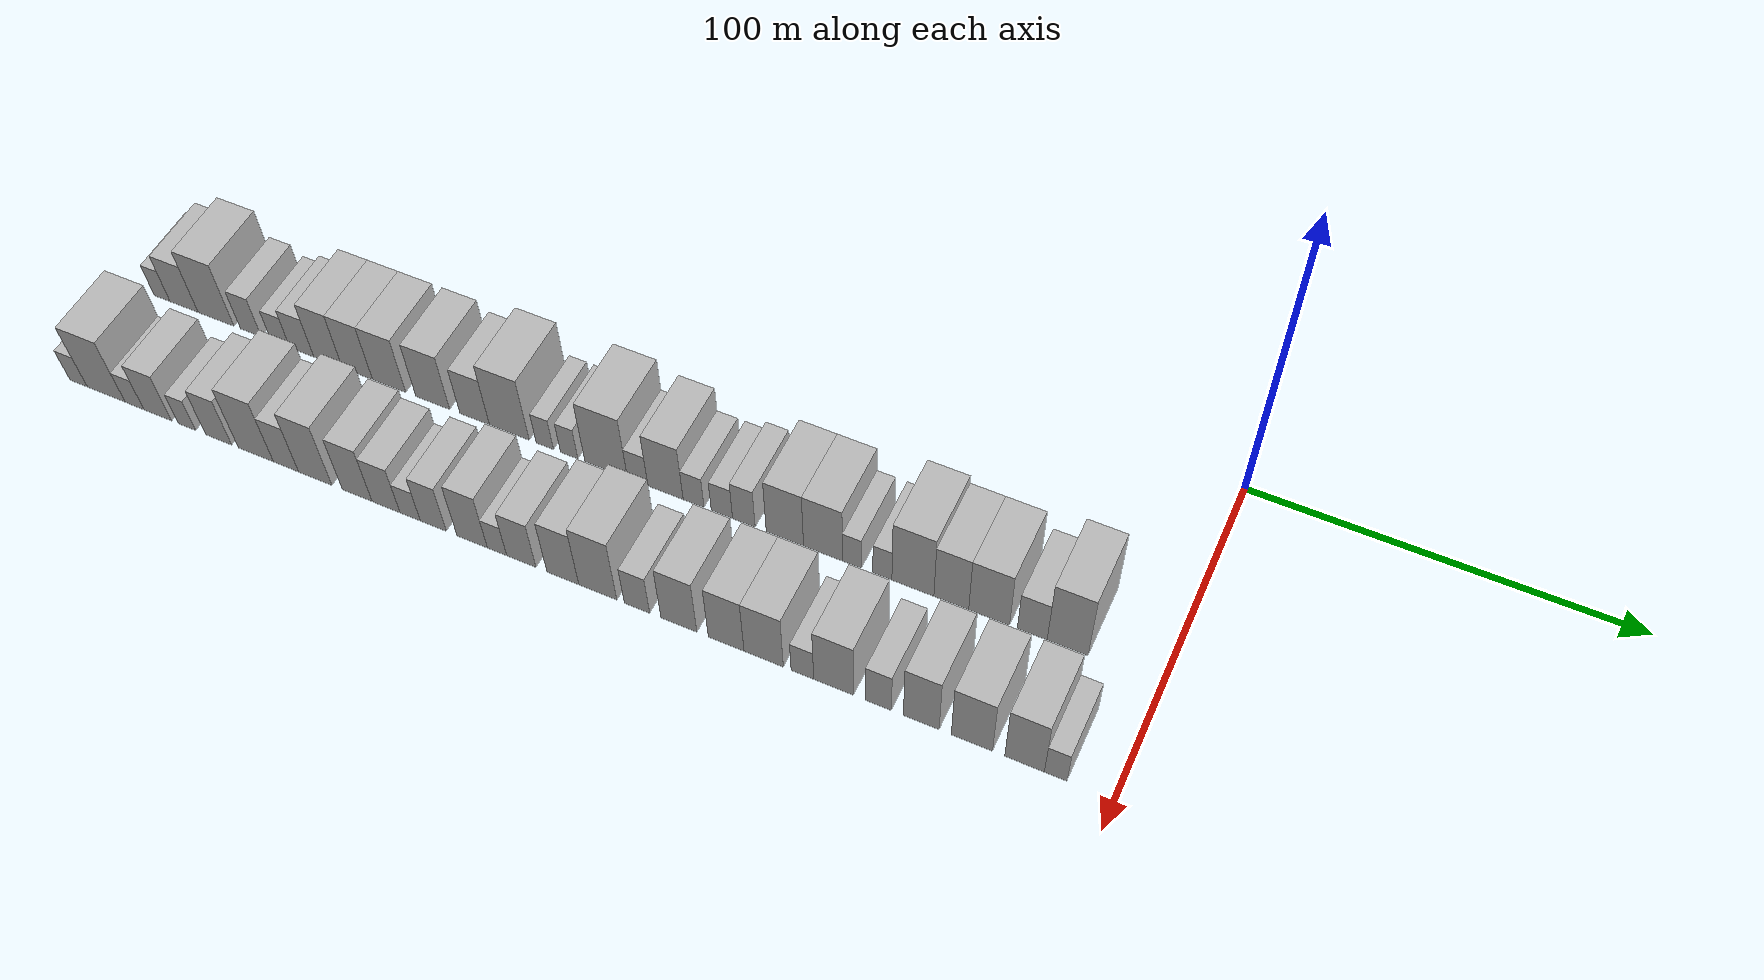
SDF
<sdf version="1.6">
 <world name="default">
  <model name="building_1">
   <static>1</static>
   <pose>50.0000 -278.5065 0 0.000000 0.000000 0.000000</pose>
   <link name="link">
    <pose>0 0 6.00 0 0 0</pose>
    <collision name="collision"><geometry><box><size>20.0000 4.9871 12.0000</size></box></geometry></collision>
    <visual name="visual">
     <cast_shadows>0</cast_shadows>
     <geometry><box><size>20.0000 4.9871 12.0000</size></box></geometry>
     <material>
      <script>
       <uri>model://HANNAS_wall/materials/scripts</uri>
       <uri>model://HANNAS_wall/materials/textures</uri>
       <name>vrc/HANNAS_wall</name>
      </script>
     </material>
    </visual>
   </link>
  </model>
  <model name="building_2">
   <static>1</static>
   <pose>50.0000 -271.5844 0 0.000000 0.000000 0.000000</pose>
   <link name="link">
    <pose>0 0 9.00 0 0 0</pose>
    <collision name="collision"><geometry><box><size>20.0000 8.8571 18.0000</size></box></geometry></collision>
    <visual name="visual">
     <cast_shadows>0</cast_shadows>
     <geometry><box><size>20.0000 8.8571 18.0000</size></box></geometry>
     <material>
      <script>
       <uri>model://HANNAS_wall/materials/scripts</uri>
       <uri>model://HANNAS_wall/materials/textures</uri>
       <name>vrc/HANNAS_wall</name>
      </script>
     </material>
    </visual>
   </link>
  </model>
  <model name="building_3">
   <static>1</static>
   <pose>50.0000 -261.5366 0 0.000000 0.000000 0.000000</pose>
   <link name="link">
    <pose>0 0 12.00 0 0 0</pose>
    <collision name="collision"><geometry><box><size>20.0000 11.2384 24.0000</size></box></geometry></collision>
    <visual name="visual">
     <cast_shadows>0</cast_shadows>
     <geometry><box><size>20.0000 11.2384 24.0000</size></box></geometry>
     <material>
      <script>
       <uri>model://HANNAS_wall/materials/scripts</uri>
       <uri>model://HANNAS_wall/materials/textures</uri>
       <name>vrc/HANNAS_wall</name>
      </script>
     </material>
    </visual>
   </link>
  </model>
  <model name="building_4">
   <static>1</static>
   <pose>50.0000 -250.6917 0 0.000000 0.000000 0.000000</pose>
   <link name="link">
    <pose>0 0 7.50 0 0 0</pose>
    <collision name="collision"><geometry><box><size>20.0000 6.4514 15.0000</size></box></geometry></collision>
    <visual name="visual">
     <cast_shadows>0</cast_shadows>
     <geometry><box><size>20.0000 6.4514 15.0000</size></box></geometry>
     <material>
      <script>
       <uri>model://HANNAS_wall/materials/scripts</uri>
       <uri>model://HANNAS_wall/materials/textures</uri>
       <name>vrc/HANNAS_wall</name>
      </script>
     </material>
    </visual>
   </link>
  </model>
  <model name="building_5">
   <static>1</static>
   <pose>50.0000 -241.5731 0 0.000000 0.000000 0.000000</pose>
   <link name="link">
    <pose>0 0 6.00 0 0 0</pose>
    <collision name="collision"><geometry><box><size>20.0000 5.7857 12.0000</size></box></geometry></collision>
    <visual name="visual">
     <cast_shadows>0</cast_shadows>
     <geometry><box><size>20.0000 5.7857 12.0000</size></box></geometry>
     <material>
      <script>
       <uri>model://HANNAS_wall/materials/scripts</uri>
       <uri>model://HANNAS_wall/materials/textures</uri>
       <name>vrc/HANNAS_wall</name>
      </script>
     </material>
    </visual>
   </link>
  </model>
  <model name="building_6">
   <static>1</static>
   <pose>50.0000 -235.0290 0 0.000000 0.000000 0.000000</pose>
   <link name="link">
    <pose>0 0 7.50 0 0 0</pose>
    <collision name="collision"><geometry><box><size>20.0000 7.3026 15.0000</size></box></geometry></collision>
    <visual name="visual">
     <cast_shadows>0</cast_shadows>
     <geometry><box><size>20.0000 7.3026 15.0000</size></box></geometry>
     <material>
      <script>
       <uri>model://HANNAS_wall/materials/scripts</uri>
       <uri>model://HANNAS_wall/materials/textures</uri>
       <name>vrc/HANNAS_wall</name>
      </script>
     </material>
    </visual>
   </link>
  </model>
  <model name="building_7">
   <static>1</static>
   <pose>50.0000 -227.0505 0 0.000000 0.000000 0.000000</pose>
   <link name="link">
    <pose>0 0 10.50 0 0 0</pose>
    <collision name="collision"><geometry><box><size>20.0000 8.6544 21.0000</size></box></geometry></collision>
    <visual name="visual">
     <cast_shadows>0</cast_shadows>
     <geometry><box><size>20.0000 8.6544 21.0000</size></box></geometry>
     <material>
      <script>
       <uri>model://HANNAS_wall/materials/scripts</uri>
       <uri>model://HANNAS_wall/materials/textures</uri>
       <name>vrc/HANNAS_wall</name>
      </script>
     </material>
    </visual>
   </link>
  </model>
  <model name="building_8">
   <static>1</static>
   <pose>50.0000 -218.1994 0 0.000000 0.000000 0.000000</pose>
   <link name="link">
    <pose>0 0 10.50 0 0 0</pose>
    <collision name="collision"><geometry><box><size>20.0000 9.0477 21.0000</size></box></geometry></collision>
    <visual name="visual">
     <cast_shadows>0</cast_shadows>
     <geometry><box><size>20.0000 9.0477 21.0000</size></box></geometry>
     <material>
      <script>
       <uri>model://HANNAS_wall/materials/scripts</uri>
       <uri>model://HANNAS_wall/materials/textures</uri>
       <name>vrc/HANNAS_wall</name>
      </script>
     </material>
    </visual>
   </link>
  </model>
  <model name="building_9">
   <static>1</static>
   <pose>50.0000 -208.7246 0 0.000000 0.000000 0.000000</pose>
   <link name="link">
    <pose>0 0 10.50 0 0 0</pose>
    <collision name="collision"><geometry><box><size>20.0000 9.9019 21.0000</size></box></geometry></collision>
    <visual name="visual">
     <cast_shadows>0</cast_shadows>
     <geometry><box><size>20.0000 9.9019 21.0000</size></box></geometry>
     <material>
      <script>
       <uri>model://HANNAS_wall/materials/scripts</uri>
       <uri>model://HANNAS_wall/materials/textures</uri>
       <name>vrc/HANNAS_wall</name>
      </script>
     </material>
    </visual>
   </link>
  </model>
  <model name="building_10">
   <static>1</static>
   <pose>50.0000 -195.8048 0 0.000000 0.000000 0.000000</pose>
   <link name="link">
    <pose>0 0 10.50 0 0 0</pose>
    <collision name="collision"><geometry><box><size>20.0000 9.9379 21.0000</size></box></geometry></collision>
    <visual name="visual">
     <cast_shadows>0</cast_shadows>
     <geometry><box><size>20.0000 9.9379 21.0000</size></box></geometry>
     <material>
      <script>
       <uri>model://HANNAS_wall/materials/scripts</uri>
       <uri>model://HANNAS_wall/materials/textures</uri>
       <name>vrc/HANNAS_wall</name>
      </script>
     </material>
    </visual>
   </link>
  </model>
  <model name="building_11">
   <static>1</static>
   <pose>50.0000 -183.5506 0 0.000000 0.000000 0.000000</pose>
   <link name="link">
    <pose>0 0 9.00 0 0 0</pose>
    <collision name="collision"><geometry><box><size>20.0000 8.5705 18.0000</size></box></geometry></collision>
    <visual name="visual">
     <cast_shadows>0</cast_shadows>
     <geometry><box><size>20.0000 8.5705 18.0000</size></box></geometry>
     <material>
      <script>
       <uri>model://HANNAS_wall/materials/scripts</uri>
       <uri>model://HANNAS_wall/materials/textures</uri>
       <name>vrc/HANNAS_wall</name>
      </script>
     </material>
    </visual>
   </link>
  </model>
  <model name="building_12">
   <static>1</static>
   <pose>50.0000 -173.5130 0 0.000000 0.000000 0.000000</pose>
   <link name="link">
    <pose>0 0 12.00 0 0 0</pose>
    <collision name="collision"><geometry><box><size>20.0000 11.5047 24.0000</size></box></geometry></collision>
    <visual name="visual">
     <cast_shadows>0</cast_shadows>
     <geometry><box><size>20.0000 11.5047 24.0000</size></box></geometry>
     <material>
      <script>
       <uri>model://HANNAS_wall/materials/scripts</uri>
       <uri>model://HANNAS_wall/materials/textures</uri>
       <name>vrc/HANNAS_wall</name>
      </script>
     </material>
    </visual>
   </link>
  </model>
  <model name="building_13">
   <static>1</static>
   <pose>50.0000 -163.2944 0 0.000000 0.000000 0.000000</pose>
   <link name="link">
    <pose>0 0 6.00 0 0 0</pose>
    <collision name="collision"><geometry><box><size>20.0000 4.9323 12.0000</size></box></geometry></collision>
    <visual name="visual">
     <cast_shadows>0</cast_shadows>
     <geometry><box><size>20.0000 4.9323 12.0000</size></box></geometry>
     <material>
      <script>
       <uri>model://HANNAS_wall/materials/scripts</uri>
       <uri>model://HANNAS_wall/materials/textures</uri>
       <name>vrc/HANNAS_wall</name>
      </script>
     </material>
    </visual>
   </link>
  </model>
  <model name="building_14">
   <static>1</static>
   <pose>50.0000 -156.3599 0 0.000000 0.000000 0.000000</pose>
   <link name="link">
    <pose>0 0 6.00 0 0 0</pose>
    <collision name="collision"><geometry><box><size>20.0000 4.9368 12.0000</size></box></geometry></collision>
    <visual name="visual">
     <cast_shadows>0</cast_shadows>
     <geometry><box><size>20.0000 4.9368 12.0000</size></box></geometry>
     <material>
      <script>
       <uri>model://HANNAS_wall/materials/scripts</uri>
       <uri>model://HANNAS_wall/materials/textures</uri>
       <name>vrc/HANNAS_wall</name>
      </script>
     </material>
    </visual>
   </link>
  </model>
  <model name="building_15">
   <static>1</static>
   <pose>50.0000 -145.9260 0 0.000000 0.000000 0.000000</pose>
   <link name="link">
    <pose>0 0 12.00 0 0 0</pose>
    <collision name="collision"><geometry><box><size>20.0000 11.9310 24.0000</size></box></geometry></collision>
    <visual name="visual">
     <cast_shadows>0</cast_shadows>
     <geometry><box><size>20.0000 11.9310 24.0000</size></box></geometry>
     <material>
      <script>
       <uri>model://HANNAS_wall/materials/scripts</uri>
       <uri>model://HANNAS_wall/materials/textures</uri>
       <name>vrc/HANNAS_wall</name>
      </script>
     </material>
    </visual>
   </link>
  </model>
  <model name="building_16">
   <static>1</static>
   <pose>50.0000 -137.0980 0 0.000000 0.000000 0.000000</pose>
   <link name="link">
    <pose>0 0 6.00 0 0 0</pose>
    <collision name="collision"><geometry><box><size>20.0000 5.7249 12.0000</size></box></geometry></collision>
    <visual name="visual">
     <cast_shadows>0</cast_shadows>
     <geometry><box><size>20.0000 5.7249 12.0000</size></box></geometry>
     <material>
      <script>
       <uri>model://HANNAS_wall/materials/scripts</uri>
       <uri>model://HANNAS_wall/materials/textures</uri>
       <name>vrc/HANNAS_wall</name>
      </script>
     </material>
    </visual>
   </link>
  </model>
  <model name="building_17">
   <static>1</static>
   <pose>50.0000 -129.3596 0 0.000000 0.000000 0.000000</pose>
   <link name="link">
    <pose>0 0 10.50 0 0 0</pose>
    <collision name="collision"><geometry><box><size>20.0000 9.7519 21.0000</size></box></geometry></collision>
    <visual name="visual">
     <cast_shadows>0</cast_shadows>
     <geometry><box><size>20.0000 9.7519 21.0000</size></box></geometry>
     <material>
      <script>
       <uri>model://HANNAS_wall/materials/scripts</uri>
       <uri>model://HANNAS_wall/materials/textures</uri>
       <name>vrc/HANNAS_wall</name>
      </script>
     </material>
    </visual>
   </link>
  </model>
  <model name="building_18">
   <static>1</static>
   <pose>50.0000 -121.6277 0 0.000000 0.000000 0.000000</pose>
   <link name="link">
    <pose>0 0 6.00 0 0 0</pose>
    <collision name="collision"><geometry><box><size>20.0000 5.7120 12.0000</size></box></geometry></collision>
    <visual name="visual">
     <cast_shadows>0</cast_shadows>
     <geometry><box><size>20.0000 5.7120 12.0000</size></box></geometry>
     <material>
      <script>
       <uri>model://HANNAS_wall/materials/scripts</uri>
       <uri>model://HANNAS_wall/materials/textures</uri>
       <name>vrc/HANNAS_wall</name>
      </script>
     </material>
    </visual>
   </link>
  </model>
  <model name="building_19">
   <static>1</static>
   <pose>50.0000 -113.8712 0 0.000000 0.000000 0.000000</pose>
   <link name="link">
    <pose>0 0 6.00 0 0 0</pose>
    <collision name="collision"><geometry><box><size>20.0000 5.8010 12.0000</size></box></geometry></collision>
    <visual name="visual">
     <cast_shadows>0</cast_shadows>
     <geometry><box><size>20.0000 5.8010 12.0000</size></box></geometry>
     <material>
      <script>
       <uri>model://HANNAS_wall/materials/scripts</uri>
       <uri>model://HANNAS_wall/materials/textures</uri>
       <name>vrc/HANNAS_wall</name>
      </script>
     </material>
    </visual>
   </link>
  </model>
  <model name="building_20">
   <static>1</static>
   <pose>50.0000 -107.9117 0 0.000000 0.000000 0.000000</pose>
   <link name="link">
    <pose>0 0 7.50 0 0 0</pose>
    <collision name="collision"><geometry><box><size>20.0000 6.1179 15.0000</size></box></geometry></collision>
    <visual name="visual">
     <cast_shadows>0</cast_shadows>
     <geometry><box><size>20.0000 6.1179 15.0000</size></box></geometry>
     <material>
      <script>
       <uri>model://HANNAS_wall/materials/scripts</uri>
       <uri>model://HANNAS_wall/materials/textures</uri>
       <name>vrc/HANNAS_wall</name>
      </script>
     </material>
    </visual>
   </link>
  </model>
  <model name="building_21">
   <static>1</static>
   <pose>50.0000 -96.8472 0 0.000000 0.000000 0.000000</pose>
   <link name="link">
    <pose>0 0 10.50 0 0 0</pose>
    <collision name="collision"><geometry><box><size>20.0000 10.0112 21.0000</size></box></geometry></collision>
    <visual name="visual">
     <cast_shadows>0</cast_shadows>
     <geometry><box><size>20.0000 10.0112 21.0000</size></box></geometry>
     <material>
      <script>
       <uri>model://HANNAS_wall/materials/scripts</uri>
       <uri>model://HANNAS_wall/materials/textures</uri>
       <name>vrc/HANNAS_wall</name>
      </script>
     </material>
    </visual>
   </link>
  </model>
  <model name="building_22">
   <static>1</static>
   <pose>50.0000 -86.6377 0 0.000000 0.000000 0.000000</pose>
   <link name="link">
    <pose>0 0 10.50 0 0 0</pose>
    <collision name="collision"><geometry><box><size>20.0000 10.4077 21.0000</size></box></geometry></collision>
    <visual name="visual">
     <cast_shadows>0</cast_shadows>
     <geometry><box><size>20.0000 10.4077 21.0000</size></box></geometry>
     <material>
      <script>
       <uri>model://HANNAS_wall/materials/scripts</uri>
       <uri>model://HANNAS_wall/materials/textures</uri>
       <name>vrc/HANNAS_wall</name>
      </script>
     </material>
    </visual>
   </link>
  </model>
  <model name="building_23">
   <static>1</static>
   <pose>50.0000 -78.9674 0 0.000000 0.000000 0.000000</pose>
   <link name="link">
    <pose>0 0 6.00 0 0 0</pose>
    <collision name="collision"><geometry><box><size>20.0000 4.9329 12.0000</size></box></geometry></collision>
    <visual name="visual">
     <cast_shadows>0</cast_shadows>
     <geometry><box><size>20.0000 4.9329 12.0000</size></box></geometry>
     <material>
      <script>
       <uri>model://HANNAS_wall/materials/scripts</uri>
       <uri>model://HANNAS_wall/materials/textures</uri>
       <name>vrc/HANNAS_wall</name>
      </script>
     </material>
    </visual>
   </link>
  </model>
  <model name="building_24">
   <static>1</static>
   <pose>50.0000 -71.0161 0 0.000000 0.000000 0.000000</pose>
   <link name="link">
    <pose>0 0 6.00 0 0 0</pose>
    <collision name="collision"><geometry><box><size>20.0000 4.9698 12.0000</size></box></geometry></collision>
    <visual name="visual">
     <cast_shadows>0</cast_shadows>
     <geometry><box><size>20.0000 4.9698 12.0000</size></box></geometry>
     <material>
      <script>
       <uri>model://HANNAS_wall/materials/scripts</uri>
       <uri>model://HANNAS_wall/materials/textures</uri>
       <name>vrc/HANNAS_wall</name>
      </script>
     </material>
    </visual>
   </link>
  </model>
  <model name="building_25">
   <static>1</static>
   <pose>50.0000 -63.0694 0 0.000000 0.000000 0.000000</pose>
   <link name="link">
    <pose>0 0 12.00 0 0 0</pose>
    <collision name="collision"><geometry><box><size>20.0000 10.9234 24.0000</size></box></geometry></collision>
    <visual name="visual">
     <cast_shadows>0</cast_shadows>
     <geometry><box><size>20.0000 10.9234 24.0000</size></box></geometry>
     <material>
      <script>
       <uri>model://HANNAS_wall/materials/scripts</uri>
       <uri>model://HANNAS_wall/materials/textures</uri>
       <name>vrc/HANNAS_wall</name>
      </script>
     </material>
    </visual>
   </link>
  </model>
  <model name="building_26">
   <static>1</static>
   <pose>50.0000 -53.1333 0 0.000000 0.000000 0.000000</pose>
   <link name="link">
    <pose>0 0 10.50 0 0 0</pose>
    <collision name="collision"><geometry><box><size>20.0000 8.9490 21.0000</size></box></geometry></collision>
    <visual name="visual">
     <cast_shadows>0</cast_shadows>
     <geometry><box><size>20.0000 8.9490 21.0000</size></box></geometry>
     <material>
      <script>
       <uri>model://HANNAS_wall/materials/scripts</uri>
       <uri>model://HANNAS_wall/materials/textures</uri>
       <name>vrc/HANNAS_wall</name>
      </script>
     </material>
    </visual>
   </link>
  </model>
  <model name="building_27">
   <static>1</static>
   <pose>50.0000 -43.4599 0 0.000000 0.000000 0.000000</pose>
   <link name="link">
    <pose>0 0 10.50 0 0 0</pose>
    <collision name="collision"><geometry><box><size>20.0000 10.3978 21.0000</size></box></geometry></collision>
    <visual name="visual">
     <cast_shadows>0</cast_shadows>
     <geometry><box><size>20.0000 10.3978 21.0000</size></box></geometry>
     <material>
      <script>
       <uri>model://HANNAS_wall/materials/scripts</uri>
       <uri>model://HANNAS_wall/materials/textures</uri>
       <name>vrc/HANNAS_wall</name>
      </script>
     </material>
    </visual>
   </link>
  </model>
  <model name="building_28">
   <static>1</static>
   <pose>50.0000 -32.5189 0 0.000000 0.000000 0.000000</pose>
   <link name="link">
    <pose>0 0 7.50 0 0 0</pose>
    <collision name="collision"><geometry><box><size>20.0000 7.4841 15.0000</size></box></geometry></collision>
    <visual name="visual">
     <cast_shadows>0</cast_shadows>
     <geometry><box><size>20.0000 7.4841 15.0000</size></box></geometry>
     <material>
      <script>
       <uri>model://HANNAS_wall/materials/scripts</uri>
       <uri>model://HANNAS_wall/materials/textures</uri>
       <name>vrc/HANNAS_wall</name>
      </script>
     </material>
    </visual>
   </link>
  </model>
  <model name="building_29">
   <static>1</static>
   <pose>50.0000 -23.6530 0 0.000000 0.000000 0.000000</pose>
   <link name="link">
    <pose>0 0 12.00 0 0 0</pose>
    <collision name="collision"><geometry><box><size>20.0000 10.2476 24.0000</size></box></geometry></collision>
    <visual name="visual">
     <cast_shadows>0</cast_shadows>
     <geometry><box><size>20.0000 10.2476 24.0000</size></box></geometry>
     <material>
      <script>
       <uri>model://HANNAS_wall/materials/scripts</uri>
       <uri>model://HANNAS_wall/materials/textures</uri>
       <name>vrc/HANNAS_wall</name>
      </script>
     </material>
    </visual>
   </link>
  </model>
  <model name="building_59">
   <static>1</static>
   <pose>82.0000 -281.2946 0 0.000000 0.000000 0.000000</pose>
   <link name="link">
    <pose>0 0 6.00 0 0 0</pose>
    <collision name="collision"><geometry><box><size>20.0000 5.4108 12.0000</size></box></geometry></collision>
    <visual name="visual">
     <cast_shadows>0</cast_shadows>
     <geometry><box><size>20.0000 5.4108 12.0000</size></box></geometry>
     <material>
      <script>
       <uri>model://HANNAS_wall/materials/scripts</uri>
       <uri>model://HANNAS_wall/materials/textures</uri>
       <name>vrc/HANNAS_wall</name>
      </script>
     </material>
    </visual>
   </link>
  </model>
  <model name="building_60">
   <static>1</static>
   <pose>82.0000 -272.7439 0 0.000000 0.000000 0.000000</pose>
   <link name="link">
    <pose>0 0 12.00 0 0 0</pose>
    <collision name="collision"><geometry><box><size>20.0000 11.6908 24.0000</size></box></geometry></collision>
    <visual name="visual">
     <cast_shadows>0</cast_shadows>
     <geometry><box><size>20.0000 11.6908 24.0000</size></box></geometry>
     <material>
      <script>
       <uri>model://HANNAS_wall/materials/scripts</uri>
       <uri>model://HANNAS_wall/materials/textures</uri>
       <name>vrc/HANNAS_wall</name>
      </script>
     </material>
    </visual>
   </link>
  </model>
  <model name="building_61">
   <static>1</static>
   <pose>82.0000 -264.0262 0 0.000000 0.000000 0.000000</pose>
   <link name="link">
    <pose>0 0 6.00 0 0 0</pose>
    <collision name="collision"><geometry><box><size>20.0000 5.7445 12.0000</size></box></geometry></collision>
    <visual name="visual">
     <cast_shadows>0</cast_shadows>
     <geometry><box><size>20.0000 5.7445 12.0000</size></box></geometry>
     <material>
      <script>
       <uri>model://HANNAS_wall/materials/scripts</uri>
       <uri>model://HANNAS_wall/materials/textures</uri>
       <name>vrc/HANNAS_wall</name>
      </script>
     </material>
    </visual>
   </link>
  </model>
  <model name="building_62">
   <static>1</static>
   <pose>82.0000 -256.9357 0 0.000000 0.000000 0.000000</pose>
   <link name="link">
    <pose>0 0 9.00 0 0 0</pose>
    <collision name="collision"><geometry><box><size>20.0000 8.4366 18.0000</size></box></geometry></collision>
    <visual name="visual">
     <cast_shadows>0</cast_shadows>
     <geometry><box><size>20.0000 8.4366 18.0000</size></box></geometry>
     <material>
      <script>
       <uri>model://HANNAS_wall/materials/scripts</uri>
       <uri>model://HANNAS_wall/materials/textures</uri>
       <name>vrc/HANNAS_wall</name>
      </script>
     </material>
    </visual>
   </link>
  </model>
  <model name="building_63">
   <static>1</static>
   <pose>82.0000 -248.0878 0 0.000000 0.000000 0.000000</pose>
   <link name="link">
    <pose>0 0 6.00 0 0 0</pose>
    <collision name="collision"><geometry><box><size>20.0000 5.2592 12.0000</size></box></geometry></collision>
    <visual name="visual">
     <cast_shadows>0</cast_shadows>
     <geometry><box><size>20.0000 5.2592 12.0000</size></box></geometry>
     <material>
      <script>
       <uri>model://HANNAS_wall/materials/scripts</uri>
       <uri>model://HANNAS_wall/materials/textures</uri>
       <name>vrc/HANNAS_wall</name>
      </script>
     </material>
    </visual>
   </link>
  </model>
  <model name="building_64">
   <static>1</static>
   <pose>82.0000 -238.5676 0 0.000000 0.000000 0.000000</pose>
   <link name="link">
    <pose>0 0 9.00 0 0 0</pose>
    <collision name="collision"><geometry><box><size>20.0000 7.7812 18.0000</size></box></geometry></collision>
    <visual name="visual">
     <cast_shadows>0</cast_shadows>
     <geometry><box><size>20.0000 7.7812 18.0000</size></box></geometry>
     <material>
      <script>
       <uri>model://HANNAS_wall/materials/scripts</uri>
       <uri>model://HANNAS_wall/materials/textures</uri>
       <name>vrc/HANNAS_wall</name>
      </script>
     </material>
    </visual>
   </link>
  </model>
  <model name="building_65">
   <static>1</static>
   <pose>82.0000 -227.4914 0 0.000000 0.000000 0.000000</pose>
   <link name="link">
    <pose>0 0 12.00 0 0 0</pose>
    <collision name="collision"><geometry><box><size>20.0000 10.3712 24.0000</size></box></geometry></collision>
    <visual name="visual">
     <cast_shadows>0</cast_shadows>
     <geometry><box><size>20.0000 10.3712 24.0000</size></box></geometry>
     <material>
      <script>
       <uri>model://HANNAS_wall/materials/scripts</uri>
       <uri>model://HANNAS_wall/materials/textures</uri>
       <name>vrc/HANNAS_wall</name>
      </script>
     </material>
    </visual>
   </link>
  </model>
  <model name="building_66">
   <static>1</static>
   <pose>82.0000 -218.5998 0 0.000000 0.000000 0.000000</pose>
   <link name="link">
    <pose>0 0 9.00 0 0 0</pose>
    <collision name="collision"><geometry><box><size>20.0000 7.4120 18.0000</size></box></geometry></collision>
    <visual name="visual">
     <cast_shadows>0</cast_shadows>
     <geometry><box><size>20.0000 7.4120 18.0000</size></box></geometry>
     <material>
      <script>
       <uri>model://HANNAS_wall/materials/scripts</uri>
       <uri>model://HANNAS_wall/materials/textures</uri>
       <name>vrc/HANNAS_wall</name>
      </script>
     </material>
    </visual>
   </link>
  </model>
  <model name="building_67">
   <static>1</static>
   <pose>82.0000 -210.0460 0 0.000000 0.000000 0.000000</pose>
   <link name="link">
    <pose>0 0 12.00 0 0 0</pose>
    <collision name="collision"><geometry><box><size>20.0000 9.6958 24.0000</size></box></geometry></collision>
    <visual name="visual">
     <cast_shadows>0</cast_shadows>
     <geometry><box><size>20.0000 9.6958 24.0000</size></box></geometry>
     <material>
      <script>
       <uri>model://HANNAS_wall/materials/scripts</uri>
       <uri>model://HANNAS_wall/materials/textures</uri>
       <name>vrc/HANNAS_wall</name>
      </script>
     </material>
    </visual>
   </link>
  </model>
  <model name="building_68">
   <static>1</static>
   <pose>82.0000 -197.8975 0 0.000000 0.000000 0.000000</pose>
   <link name="link">
    <pose>0 0 10.50 0 0 0</pose>
    <collision name="collision"><geometry><box><size>20.0000 8.6012 21.0000</size></box></geometry></collision>
    <visual name="visual">
     <cast_shadows>0</cast_shadows>
     <geometry><box><size>20.0000 8.6012 21.0000</size></box></geometry>
     <material>
      <script>
       <uri>model://HANNAS_wall/materials/scripts</uri>
       <uri>model://HANNAS_wall/materials/textures</uri>
       <name>vrc/HANNAS_wall</name>
      </script>
     </material>
    </visual>
   </link>
  </model>
  <model name="building_69">
   <static>1</static>
   <pose>82.0000 -189.6049 0 0.000000 0.000000 0.000000</pose>
   <link name="link">
    <pose>0 0 9.00 0 0 0</pose>
    <collision name="collision"><geometry><box><size>20.0000 7.9839 18.0000</size></box></geometry></collision>
    <visual name="visual">
     <cast_shadows>0</cast_shadows>
     <geometry><box><size>20.0000 7.9839 18.0000</size></box></geometry>
     <material>
      <script>
       <uri>model://HANNAS_wall/materials/scripts</uri>
       <uri>model://HANNAS_wall/materials/textures</uri>
       <name>vrc/HANNAS_wall</name>
      </script>
     </material>
    </visual>
   </link>
  </model>
  <model name="building_70">
   <static>1</static>
   <pose>82.0000 -182.7330 0 0.000000 0.000000 0.000000</pose>
   <link name="link">
    <pose>0 0 6.00 0 0 0</pose>
    <collision name="collision"><geometry><box><size>20.0000 5.7600 12.0000</size></box></geometry></collision>
    <visual name="visual">
     <cast_shadows>0</cast_shadows>
     <geometry><box><size>20.0000 5.7600 12.0000</size></box></geometry>
     <material>
      <script>
       <uri>model://HANNAS_wall/materials/scripts</uri>
       <uri>model://HANNAS_wall/materials/textures</uri>
       <name>vrc/HANNAS_wall</name>
      </script>
     </material>
    </visual>
   </link>
  </model>
  <model name="building_71">
   <static>1</static>
   <pose>82.0000 -176.1849 0 0.000000 0.000000 0.000000</pose>
   <link name="link">
    <pose>0 0 9.00 0 0 0</pose>
    <collision name="collision"><geometry><box><size>20.0000 7.3361 18.0000</size></box></geometry></collision>
    <visual name="visual">
     <cast_shadows>0</cast_shadows>
     <geometry><box><size>20.0000 7.3361 18.0000</size></box></geometry>
     <material>
      <script>
       <uri>model://HANNAS_wall/materials/scripts</uri>
       <uri>model://HANNAS_wall/materials/textures</uri>
       <name>vrc/HANNAS_wall</name>
      </script>
     </material>
    </visual>
   </link>
  </model>
  <model name="building_72">
   <static>1</static>
   <pose>82.0000 -165.2779 0 0.000000 0.000000 0.000000</pose>
   <link name="link">
    <pose>0 0 10.50 0 0 0</pose>
    <collision name="collision"><geometry><box><size>20.0000 8.4780 21.0000</size></box></geometry></collision>
    <visual name="visual">
     <cast_shadows>0</cast_shadows>
     <geometry><box><size>20.0000 8.4780 21.0000</size></box></geometry>
     <material>
      <script>
       <uri>model://HANNAS_wall/materials/scripts</uri>
       <uri>model://HANNAS_wall/materials/textures</uri>
       <name>vrc/HANNAS_wall</name>
      </script>
     </material>
    </visual>
   </link>
  </model>
  <model name="building_73">
   <static>1</static>
   <pose>82.0000 -158.3622 0 0.000000 0.000000 0.000000</pose>
   <link name="link">
    <pose>0 0 6.00 0 0 0</pose>
    <collision name="collision"><geometry><box><size>20.0000 5.3534 12.0000</size></box></geometry></collision>
    <visual name="visual">
     <cast_shadows>0</cast_shadows>
     <geometry><box><size>20.0000 5.3534 12.0000</size></box></geometry>
     <material>
      <script>
       <uri>model://HANNAS_wall/materials/scripts</uri>
       <uri>model://HANNAS_wall/materials/textures</uri>
       <name>vrc/HANNAS_wall</name>
      </script>
     </material>
    </visual>
   </link>
  </model>
  <model name="building_74">
   <static>1</static>
   <pose>82.0000 -151.6427 0 0.000000 0.000000 0.000000</pose>
   <link name="link">
    <pose>0 0 9.00 0 0 0</pose>
    <collision name="collision"><geometry><box><size>20.0000 8.0855 18.0000</size></box></geometry></collision>
    <visual name="visual">
     <cast_shadows>0</cast_shadows>
     <geometry><box><size>20.0000 8.0855 18.0000</size></box></geometry>
     <material>
      <script>
       <uri>model://HANNAS_wall/materials/scripts</uri>
       <uri>model://HANNAS_wall/materials/textures</uri>
       <name>vrc/HANNAS_wall</name>
      </script>
     </material>
    </visual>
   </link>
  </model>
  <model name="building_75">
   <static>1</static>
   <pose>82.0000 -140.2580 0 0.000000 0.000000 0.000000</pose>
   <link name="link">
    <pose>0 0 10.50 0 0 0</pose>
    <collision name="collision"><geometry><box><size>20.0000 8.6839 21.0000</size></box></geometry></collision>
    <visual name="visual">
     <cast_shadows>0</cast_shadows>
     <geometry><box><size>20.0000 8.6839 21.0000</size></box></geometry>
     <material>
      <script>
       <uri>model://HANNAS_wall/materials/scripts</uri>
       <uri>model://HANNAS_wall/materials/textures</uri>
       <name>vrc/HANNAS_wall</name>
      </script>
     </material>
    </visual>
   </link>
  </model>
  <model name="building_76">
   <static>1</static>
   <pose>82.0000 -130.7695 0 0.000000 0.000000 0.000000</pose>
   <link name="link">
    <pose>0 0 12.00 0 0 0</pose>
    <collision name="collision"><geometry><box><size>20.0000 10.2931 24.0000</size></box></geometry></collision>
    <visual name="visual">
     <cast_shadows>0</cast_shadows>
     <geometry><box><size>20.0000 10.2931 24.0000</size></box></geometry>
     <material>
      <script>
       <uri>model://HANNAS_wall/materials/scripts</uri>
       <uri>model://HANNAS_wall/materials/textures</uri>
       <name>vrc/HANNAS_wall</name>
      </script>
     </material>
    </visual>
   </link>
  </model>
  <model name="building_77">
   <static>1</static>
   <pose>82.0000 -120.2314 0 0.000000 0.000000 0.000000</pose>
   <link name="link">
    <pose>0 0 7.50 0 0 0</pose>
    <collision name="collision"><geometry><box><size>20.0000 6.7831 15.0000</size></box></geometry></collision>
    <visual name="visual">
     <cast_shadows>0</cast_shadows>
     <geometry><box><size>20.0000 6.7831 15.0000</size></box></geometry>
     <material>
      <script>
       <uri>model://HANNAS_wall/materials/scripts</uri>
       <uri>model://HANNAS_wall/materials/textures</uri>
       <name>vrc/HANNAS_wall</name>
      </script>
     </material>
    </visual>
   </link>
  </model>
  <model name="building_78">
   <static>1</static>
   <pose>82.0000 -109.0870 0 0.000000 0.000000 0.000000</pose>
   <link name="link">
    <pose>0 0 10.50 0 0 0</pose>
    <collision name="collision"><geometry><box><size>20.0000 9.5058 21.0000</size></box></geometry></collision>
    <visual name="visual">
     <cast_shadows>0</cast_shadows>
     <geometry><box><size>20.0000 9.5058 21.0000</size></box></geometry>
     <material>
      <script>
       <uri>model://HANNAS_wall/materials/scripts</uri>
       <uri>model://HANNAS_wall/materials/textures</uri>
       <name>vrc/HANNAS_wall</name>
      </script>
     </material>
    </visual>
   </link>
  </model>
  <model name="building_79">
   <static>1</static>
   <pose>82.0000 -96.6779 0 0.000000 0.000000 0.000000</pose>
   <link name="link">
    <pose>0 0 10.50 0 0 0</pose>
    <collision name="collision"><geometry><box><size>20.0000 9.3124 21.0000</size></box></geometry></collision>
    <visual name="visual">
     <cast_shadows>0</cast_shadows>
     <geometry><box><size>20.0000 9.3124 21.0000</size></box></geometry>
     <material>
      <script>
       <uri>model://HANNAS_wall/materials/scripts</uri>
       <uri>model://HANNAS_wall/materials/textures</uri>
       <name>vrc/HANNAS_wall</name>
      </script>
     </material>
    </visual>
   </link>
  </model>
  <model name="building_80">
   <static>1</static>
   <pose>82.0000 -86.9400 0 0.000000 0.000000 0.000000</pose>
   <link name="link">
    <pose>0 0 10.50 0 0 0</pose>
    <collision name="collision"><geometry><box><size>20.0000 10.1635 21.0000</size></box></geometry></collision>
    <visual name="visual">
     <cast_shadows>0</cast_shadows>
     <geometry><box><size>20.0000 10.1635 21.0000</size></box></geometry>
     <material>
      <script>
       <uri>model://HANNAS_wall/materials/scripts</uri>
       <uri>model://HANNAS_wall/materials/textures</uri>
       <name>vrc/HANNAS_wall</name>
      </script>
     </material>
    </visual>
   </link>
  </model>
  <model name="building_81">
   <static>1</static>
   <pose>82.0000 -76.9602 0 0.000000 0.000000 0.000000</pose>
   <link name="link">
    <pose>0 0 6.00 0 0 0</pose>
    <collision name="collision"><geometry><box><size>20.0000 5.7960 12.0000</size></box></geometry></collision>
    <visual name="visual">
     <cast_shadows>0</cast_shadows>
     <geometry><box><size>20.0000 5.7960 12.0000</size></box></geometry>
     <material>
      <script>
       <uri>model://HANNAS_wall/materials/scripts</uri>
       <uri>model://HANNAS_wall/materials/textures</uri>
       <name>vrc/HANNAS_wall</name>
      </script>
     </material>
    </visual>
   </link>
  </model>
  <model name="building_82">
   <static>1</static>
   <pose>82.0000 -68.9976 0 0.000000 0.000000 0.000000</pose>
   <link name="link">
    <pose>0 0 10.50 0 0 0</pose>
    <collision name="collision"><geometry><box><size>20.0000 10.1292 21.0000</size></box></geometry></collision>
    <visual name="visual">
     <cast_shadows>0</cast_shadows>
     <geometry><box><size>20.0000 10.1292 21.0000</size></box></geometry>
     <material>
      <script>
       <uri>model://HANNAS_wall/materials/scripts</uri>
       <uri>model://HANNAS_wall/materials/textures</uri>
       <name>vrc/HANNAS_wall</name>
      </script>
     </material>
    </visual>
   </link>
  </model>
  <model name="building_83">
   <static>1</static>
   <pose>82.0000 -57.6738 0 0.000000 0.000000 0.000000</pose>
   <link name="link">
    <pose>0 0 7.50 0 0 0</pose>
    <collision name="collision"><geometry><box><size>20.0000 6.5184 15.0000</size></box></geometry></collision>
    <visual name="visual">
     <cast_shadows>0</cast_shadows>
     <geometry><box><size>20.0000 6.5184 15.0000</size></box></geometry>
     <material>
      <script>
       <uri>model://HANNAS_wall/materials/scripts</uri>
       <uri>model://HANNAS_wall/materials/textures</uri>
       <name>vrc/HANNAS_wall</name>
      </script>
     </material>
    </visual>
   </link>
  </model>
  <model name="building_84">
   <static>1</static>
   <pose>82.0000 -46.9724 0 0.000000 0.000000 0.000000</pose>
   <link name="link">
    <pose>0 0 10.50 0 0 0</pose>
    <collision name="collision"><geometry><box><size>20.0000 8.8845 21.0000</size></box></geometry></collision>
    <visual name="visual">
     <cast_shadows>0</cast_shadows>
     <geometry><box><size>20.0000 8.8845 21.0000</size></box></geometry>
     <material>
      <script>
       <uri>model://HANNAS_wall/materials/scripts</uri>
       <uri>model://HANNAS_wall/materials/textures</uri>
       <name>vrc/HANNAS_wall</name>
      </script>
     </material>
    </visual>
   </link>
  </model>
  <model name="building_85">
   <static>1</static>
   <pose>82.0000 -34.4748 0 0.000000 0.000000 0.000000</pose>
   <link name="link">
    <pose>0 0 10.50 0 0 0</pose>
    <collision name="collision"><geometry><box><size>20.0000 10.1105 21.0000</size></box></geometry></collision>
    <visual name="visual">
     <cast_shadows>0</cast_shadows>
     <geometry><box><size>20.0000 10.1105 21.0000</size></box></geometry>
     <material>
      <script>
       <uri>model://HANNAS_wall/materials/scripts</uri>
       <uri>model://HANNAS_wall/materials/textures</uri>
       <name>vrc/HANNAS_wall</name>
      </script>
     </material>
    </visual>
   </link>
  </model>
  <model name="building_86">
   <static>1</static>
   <pose>82.0000 -21.6256 0 0.000000 0.000000 0.000000</pose>
   <link name="link">
    <pose>0 0 10.50 0 0 0</pose>
    <collision name="collision"><geometry><box><size>20.0000 9.5879 21.0000</size></box></geometry></collision>
    <visual name="visual">
     <cast_shadows>0</cast_shadows>
     <geometry><box><size>20.0000 9.5879 21.0000</size></box></geometry>
     <material>
      <script>
       <uri>model://HANNAS_wall/materials/scripts</uri>
       <uri>model://HANNAS_wall/materials/textures</uri>
       <name>vrc/HANNAS_wall</name>
      </script>
     </material>
    </visual>
   </link>
  </model>
  <model name="building_87">
   <static>1</static>
   <pose>82.0000 -14.1148 0 0.000000 0.000000 0.000000</pose>
   <link name="link">
    <pose>0 0 6.00 0 0 0</pose>
    <collision name="collision"><geometry><box><size>20.0000 5.4337 12.0000</size></box></geometry></collision>
    <visual name="visual">
     <cast_shadows>0</cast_shadows>
     <geometry><box><size>20.0000 5.4337 12.0000</size></box></geometry>
     <material>
      <script>
       <uri>model://HANNAS_wall/materials/scripts</uri>
       <uri>model://HANNAS_wall/materials/textures</uri>
       <name>vrc/HANNAS_wall</name>
      </script>
     </material>
    </visual>
   </link>
  </model>
 </world>
</sdf>
